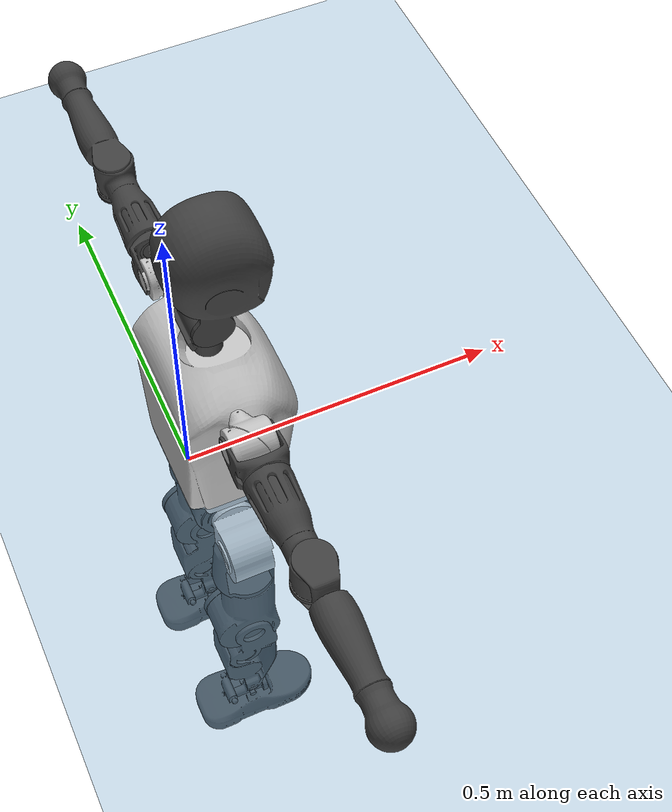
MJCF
<mujoco model="T1">
  <compiler angle="radian" assetdir="assets" balanceinertia="true" inertiafromgeom="false"/>

  <option timestep="0.005" density="1.2" viscosity="2e-05"/>

  <size nkey="1"/>

  <visual>
    <quality shadowsize="8192"/>
    <map shadowclip="0.5"/>
  </visual>

  <default>
    <default class="/">
      <joint armature="0.01" damping="0.01" frictionloss="0.1"/>
      <geom contype="0" conaffinity="0" group="1" solref="-1000 -80"/>
      <site size="0.01 0.005 0.005" group="5"/>
      <general forcelimited="true" biastype="affine" gainprm="25" biasprm="0 -25 -0.6"/>
      <default class="t1">
        <geom rgba="0.25 0.25 0.25 1"/>
        <default class="visual">
          <geom type="mesh" group="2"/>
        </default>
        <default class="collision">
          <geom group="3"/>
        </default>
        <default class="foot">
          <geom size="0.1115 0.05 0.015" type="box" condim="6" group="4" priority="1" solimp="0.015 1 0.015"/>
        </default>
        <default class="reward_collision_sphere">
          <geom group="5" rgba="1 0 0 1"/>
        </default>
      </default>
    </default>
  </default>

  <asset>
    <texture type="skybox" colorspace="auto" name="//unnamed_texture_0" builtin="gradient" rgb1="0.95 0.95 0.95" rgb2="0.95 0.95 0.95" width="100" height="600"/>
    <texture type="2d" colorspace="auto" name="texplane" builtin="checker" rgb1="0.345 0.575 0.748" rgb2="0.345 0.575 0.748" markrgb="1 1 1" width="512" height="512"/>
    <material name="MatPlane" class="/" texture="texplane" texuniform="true" texrepeat="2 2" specular="0.9"/>
    <mesh name="Trunk" class="/" file="Trunk.stl"/>
    <mesh name="H1" class="/" file="H1.stl"/>
    <mesh name="H2" class="/" file="H2.stl"/>
    <mesh name="AL1" class="/" file="AL1.stl"/>
    <mesh name="AL2" class="/" file="AL2.stl"/>
    <mesh name="AL3" class="/" file="AL3.stl"/>
    <mesh name="left_hand_link" class="/" file="left_hand_link.stl"/>
    <mesh name="AR1" class="/" file="AR1.stl"/>
    <mesh name="AR2" class="/" file="AR2.stl"/>
    <mesh name="AR3" class="/" file="AR3.stl"/>
    <mesh name="right_hand_link" class="/" file="right_hand_link.stl"/>
    <mesh name="Waist" class="/" file="Waist.stl"/>
    <mesh name="Hip_Pitch_Left" class="/" file="Hip_Pitch_Left.stl"/>
    <mesh name="Hip_Roll_Left" class="/" file="Hip_Roll_Left.stl"/>
    <mesh name="Hip_Yaw_Left" class="/" file="Hip_Yaw_Left.stl"/>
    <mesh name="Shank_Left" class="/" file="Shank_Left.stl"/>
    <mesh name="Ankle_Cross_Left" class="/" file="Ankle_Cross_Left.stl"/>
    <mesh name="left_foot_link" class="/" file="left_foot_link.stl"/>
    <mesh name="Hip_Pitch_Right" class="/" file="Hip_Pitch_Right.stl"/>
    <mesh name="Hip_Roll_Right" class="/" file="Hip_Roll_Right.stl"/>
    <mesh name="Hip_Yaw_Right" class="/" file="Hip_Yaw_Right.stl"/>
    <mesh name="Shank_Right" class="/" file="Shank_Right.stl"/>
    <mesh name="Ankle_Cross_Right" class="/" file="Ankle_Cross_Right.stl"/>
    <mesh name="right_foot_link" class="/" file="right_foot_link.stl"/>
  </asset>

  <worldbody>
    <geom name="floor" class="/" size="100 100 0.125" type="plane" group="0" material="MatPlane"/>
    <light name="toplight_shadow" class="/" pos="0 0 5" dir="0.0990148 0.0990148 -0.990148" type="directional" ambient="0.04 0.04 0.04" diffuse="0.55 0.55 0.55" specular="0.12 0.12 0.12"/>
    <light name="toplight_fill" class="/" pos="0 0 5" dir="0.0990148 0.0990148 -0.990148" type="directional" castshadow="false" ambient="0.04 0.04 0.04" diffuse="0.3 0.3 0.3" specular="0.08 0.08 0.08"/>
    <body name="trunk" childclass="t1" pos="5.9061e-05 0.00214072 -0.00267648" quat="0.999999 -2.55569e-05 -0.0012495 2.27158e-05">
      <inertial pos="0.0404459 -0.00044566 0.114559" quat="0.999968 -0.000438459 -0.00799688 0.000349959" mass="9.55638" diaginertia="0.0197855 0.0767996 0.0830027"/>
      <joint name="//unnamed_joint_0" type="free" armature="0" damping="0" frictionloss="0"/>
      <geom name="//unnamed_geom_1" class="visual" rgba="0.76 0.76 0.76 1" mesh="Trunk"/>
      <geom name="//unnamed_geom_2" class="collision" size="0.0710091 0.0946788 0.142018" pos="0.0445773 0 0.131338" type="box"/>
      <geom name="//unnamed_geom_3" class="reward_collision_sphere" size="0.108881" pos="0.0445773 0 0.109448"/>
      <geom name="//unnamed_geom_4" class="reward_collision_sphere" size="0.0142018" pos="0.0445773 0.0852485 0"/>
      <geom name="//unnamed_geom_5" class="reward_collision_sphere" size="0.0142018" pos="0.0445773 -0.0852485 0"/>
      <geom name="//unnamed_geom_6" class="reward_collision_sphere" size="0.0142018" pos="0.0445773 0.107313 0.197007"/>
      <geom name="//unnamed_geom_7" class="reward_collision_sphere" size="0.0142018" pos="0.0445773 -0.107313 0.197007"/>
      <site name="imu" pos="-0.0135109 0.0035141 -0.00207605" size="0.00946788"/>
      <camera name="track" pos="0 -2.00585 0" quat="0.707107 0.707107 0 0" mode="trackcom"/>
      <camera name="ego_camera" pos="0.0906405 0 0.459684" quat="-0.5 -0.5 0.5 0.5"/>
      <body name="H1" pos="0.0474955 -0.000199069 0.267551" quat="0.999999 0.00104277 -0.000614503 -0.00076375">
        <inertial pos="0.00123252 -0.000554952 0.0621408" quat="0.763727 -0.0132747 0.00121974 0.645402" mass="0.381555" diaginertia="5.49818e-05 0.000231522 0.000225577"/>
        <joint name="AAHead_yaw" pos="0 0 0" axis="0.00104737 -0.00114013 0.999999" range="-1.61808 1.58062" armature="0.00921684" damping="0.000841368" frictionloss="0.0965819"/>
        <geom name="//unnamed_geom_8" class="visual" mesh="H1"/>
        <body name="H2" pos="-0.000369576 -0.000736664 0.0695403" quat="0.999999 7.54126e-05 0.000700217 0.00112607">
          <inertial pos="0.00488033 -1.51486e-05 0.107803" quat="0.988479 0.10569 -0.0746138 -0.0785563" mass="0.519671" diaginertia="0.000447904 0.0018946 0.0027101"/>
          <joint name="Head_pitch" pos="0 0 0" axis="-0.0130433 -0.999902 0.00510463" range="-1.27321 0.403392" armature="0.0107919" damping="0.0191065" frictionloss="0.106949"/>
          <geom name="//unnamed_geom_9" class="visual" mesh="H2"/>
          <geom name="//unnamed_geom_10" class="collision" size="0.075743" pos="0.00742955 0 0.120393"/>
          <geom name="//unnamed_geom_11" class="reward_collision_sphere" size="0.0852109" pos="0.0148591 0 0.109448"/>
        </body>
      </body>
      <body name="AL1" pos="0.0461085 0.109167 0.241934" quat="1 0.000172413 0.000817375 -0.000279005">
        <inertial pos="-0.00313431 0.0440856 -0.00138048" quat="0.506765 0.503549 -0.503286 0.486138" mass="0.438723" diaginertia="0.000300159 0.00131835 0.000452284"/>
        <joint name="Left_Shoulder_Pitch" pos="0 0 0" axis="-0.00129351 0.999999 -0.000771142" stiffness="0.00150179" range="-3.29345 1.2194" armature="0.00953427" damping="0.017208" frictionloss="0.0917945"/>
        <geom name="//unnamed_geom_12" class="visual" rgba="0.76 0.76 0.76 1" mesh="AL1"/>
        <body name="AL2" pos="-0.000522581 0.0494705 -0.0027683" quat="0.999999 -0.00101624 0.000136696 0.000908976">
          <inertial pos="0.00262859 0.0372969 -0.00291563" quat="0.487395 0.50922 -0.490893 0.51202" mass="0.141184" diaginertia="9.20964e-05 0.000343744 0.000276864"/>
          <joint name="Left_Shoulder_Roll" pos="0 0 0" axis="-0.99993 -0.00607317 0.0101221" range="-1.5626 1.7555" armature="0.00891035" damping="0.00374919" frictionloss="0.0819542"/>
          <geom name="//unnamed_geom_13" class="visual" mesh="AL2"/>
          <body name="AL3" pos="-0.0020435 0.0593395 0.00115701" quat="1 -0.000233696 -0.000444035 -0.000320191">
            <inertial pos="0.000634498 0.0856532 0.00260396" quat="0.706659 0.707553 -0.000917203 0.00116176" mass="0.867421" diaginertia="0.00295528 0.013092 0.000959966"/>
            <joint name="Left_Elbow_Pitch" pos="0 0 0" axis="-0.0113213 -0.999906 -0.00776122" stiffness="0.000203059" range="-2.29349 2.27577" armature="0.00965529" damping="0.00290254" frictionloss="0.0978965"/>
            <geom name="//unnamed_geom_14" class="visual" mesh="AL3"/>
            <geom name="//unnamed_geom_15" class="collision" size="0.0284036 0.0710091" pos="0 0.0501462 0" quat="0.707105 0.707108 0 0" type="cylinder"/>
            <geom name="//unnamed_geom_16" class="reward_collision_sphere" size="0.0340844"/>
            <body name="left_hand_link" pos="-0.0018257 0.145336 0.00268605" quat="1 1.95033e-05 -6.62583e-05 6.3216e-05">
              <inertial pos="5.06091e-05 0.110951 0.00305126" quat="0.707484 0.706728 0.000838893 0.0011569" mass="0.283782" diaginertia="0.00184338 0.00875224 0.000348814"/>
              <joint name="Left_Elbow_Yaw" pos="0 0 0" axis="0.00973951 0.0121625 0.999879" range="-2.45029 0.0110371" armature="0.00882316" damping="0.0118629" frictionloss="0.104465"/>
              <geom name="//unnamed_geom_17" class="visual" mesh="left_hand_link"/>
              <geom name="//unnamed_geom_18" class="collision" size="0.0284036 0.082844" pos="0 0.13038 0" quat="0.707105 0.707108 0 0" type="cylinder"/>
              <geom name="//unnamed_geom_19" class="reward_collision_sphere" size="0.0473394"/>
              <geom name="//unnamed_geom_20" class="reward_collision_sphere" size="0.0331376" pos="0 0.110322 0"/>
              <geom name="//unnamed_geom_21" class="reward_collision_sphere" size="0.0331376" pos="0 0.215629 0"/>
            </body>
          </body>
        </body>
      </body>
      <body name="AR1" pos="0.045067 -0.107639 0.242675" quat="0.999999 -0.000590252 0.00118297 0.000797647">
        <inertial pos="0.000299649 -0.0464079 -0.000852035" quat="0.502048 0.499333 -0.506076 0.492444" mass="0.447054" diaginertia="0.00029841 0.0013127 0.000455887"/>
        <joint name="Right_Shoulder_Pitch" pos="0 0 0" axis="0.000384931 -1 -0.000534527" range="-1.22366 3.35173" armature="0.00982115" damping="0" frictionloss="0.0908707"/>
        <geom name="//unnamed_geom_22" class="visual" rgba="0.76 0.76 0.76 1" mesh="AR1"/>
        <body name="AR2" pos="-0.000950695 -0.0463474 0.000655556" quat="0.999999 0.00101147 0.000510433 -0.000171034">
          <inertial pos="0.0021924 -0.0383521 0.00277662" quat="0.509941 0.489363 -0.511382 0.488848" mass="0.130742" diaginertia="9.33543e-05 0.000354092 0.000267064"/>
          <joint name="Right_Shoulder_Roll" pos="0 0 0" axis="-0.99993 0.00580135 -0.0103475" stiffness="2.70246e-05" range="-1.75084 1.57385" armature="0.00950499" damping="0.0130576" frictionloss="0.107764"/>
          <geom name="//unnamed_geom_23" class="visual" mesh="AR2"/>
          <body name="AR3" pos="-0.00109859 -0.0579281 -0.000189368" quat="1 -0.000149965 -0.00011396 0.000148758">
            <inertial pos="-0.00288961 -0.0851625 -0.000855228" quat="0.702466 0.711655 -0.00827081 0.00457335" mass="0.882389" diaginertia="0.00280711 0.0123931 0.000973553"/>
            <joint name="Right_Elbow_Pitch" pos="0 0 0" axis="-0.00310217 0.999976 -0.00612035" range="-2.26478 2.23803" armature="0.00810592" damping="0.00267373" frictionloss="0.0980399"/>
            <geom name="//unnamed_geom_24" class="visual" mesh="AR3"/>
            <geom name="//unnamed_geom_25" class="collision" size="0.0284036 0.0710091" pos="0 -0.0501462 0" quat="0.707105 0.707108 0 0" type="cylinder"/>
            <geom name="//unnamed_geom_26" class="reward_collision_sphere" size="0.0340844"/>
            <body name="right_hand_link" pos="-0.000288225 -0.148093 0.00267466" quat="1 6.17844e-06 -5.26716e-06 -1.86468e-05">
              <inertial pos="-0.00239725 -0.107127 0.00127939" quat="0.705426 0.708782 0.000580257 0.00128962" mass="0.274343" diaginertia="0.00182686 0.00808631 0.000337547"/>
              <joint name="Right_Elbow_Yaw" pos="0 0 0" axis="0.00185215 0.00285553 0.999994" range="0.0110906 2.44366" armature="0.00948199" damping="0.00530844" frictionloss="0.0935587"/>
              <geom name="//unnamed_geom_27" class="visual" mesh="right_hand_link"/>
              <geom name="//unnamed_geom_28" class="collision" size="0.0284036 0.082844" pos="0 -0.13038 0" quat="0.707105 0.707108 0 0" type="cylinder"/>
              <geom name="//unnamed_geom_29" class="reward_collision_sphere" size="0.0473394"/>
              <geom name="//unnamed_geom_30" class="reward_collision_sphere" size="0.0331376" pos="0 -0.110322 0"/>
              <geom name="//unnamed_geom_31" class="reward_collision_sphere" size="0.0331376" pos="0 -0.215629 0"/>
            </body>
          </body>
        </body>
      </body>
      <body name="Waist" pos="0.0486969 0.000765552 -0.124095" quat="1 -9.78037e-05 -6.39657e-06 -8.92184e-05">
        <inertial pos="0.00369379 9.27479e-05 0.00874785" quat="0.983999 0.000338098 -0.178172 0.000900456" mass="2.16882" diaginertia="0.00117046 0.00549233 0.0071851"/>
        <joint name="Waist" pos="0 0 0" axis="0.00465522 -0.00165416 0.999988" range="-1.62007 1.5986" armature="0.00956809" damping="0" frictionloss="0.0959153"/>
        <geom name="//unnamed_geom_32" class="visual" mesh="Waist"/>
        <body name="Hip_Pitch_Left" pos="-8.86854e-05 0.108818 0.00285713" quat="1 1.1026e-05 3.76003e-05 0.000264566">
          <inertial pos="-0.00106839 -0.00721017 -0.0224669" quat="0.975012 0.221374 0.0183938 0.00243495" mass="0.895805" diaginertia="0.000418973 0.00147994 0.00194113"/>
          <joint name="Left_Hip_Pitch" pos="0 0 0" axis="-0.00294454 0.999985 -0.0045955" range="-1.74476 1.57989" armature="0.00953928" damping="0" frictionloss="0.0817621"/>
          <geom name="//unnamed_geom_33" class="visual" rgba="0.76 0.76 0.76 1" mesh="Hip_Pitch_Left"/>
          <body name="Hip_Roll_Left" pos="0.00234889 -0.000337792 -0.020616" quat="1 -3.46213e-05 5.55055e-06 2.61566e-06">
            <inertial pos="0.000474714 0.00116264 -0.0589107" quat="0.705043 -0.00542882 -0.009505 0.70908" mass="0.338969" diaginertia="0.000412015 0.00162252 0.000838591"/>
            <joint name="Left_Hip_Roll" pos="0 0 0" axis="-0.999997 0.000835668 -0.00218457" range="-1.5186 0.20338" armature="0.00948469" damping="0.0215034" frictionloss="0.0832342"/>
            <geom name="//unnamed_geom_34" class="visual" mesh="Hip_Roll_Left"/>
            <geom name="//unnamed_geom_35" class="reward_collision_sphere" size="0.0520733"/>
            <body name="Hip_Yaw_Left" pos="-0.00106992 -0.00149799 -0.0875301" quat="1 -1.8994e-05 -6.20013e-05 7.64306e-06">
              <inertial pos="-0.00580217 0.000286477 -0.10063" quat="0.696741 -0.0339373 -0.0314486 0.715829" mass="1.79785" diaginertia="0.00603435 0.0257659 0.00411114"/>
              <joint name="Left_Hip_Yaw" pos="0 0 0" axis="-0.00921169 0.00397358 -0.99995" range="-1.01903 1.05914" armature="0.00829399" damping="0" frictionloss="0.0815745"/>
              <geom name="//unnamed_geom_36" class="visual" mesh="Hip_Yaw_Left"/>
              <geom name="//unnamed_geom_37" class="collision" size="0.0473394 0.075743" type="cylinder"/>
              <body name="Shank_Left" pos="-0.0106534 0.00266251 -0.144502" quat="0.999999 -0.000904818 -0.000780562 -0.000522291">
                <inertial pos="-0.0031388 -0.00195268 -0.136468" quat="0.997337 -0.0121124 -0.0236276 0.0679232" mass="1.48075" diaginertia="0.00824411 0.0357163 0.00296947"/>
                <joint name="Left_Knee_Pitch" pos="0 0 0" axis="-0.0034784 0.999911 -0.0129122" stiffness="0.000278438" range="0.0110432 2.34337" armature="0.010624" damping="0.0142469" frictionloss="0.0817937"/>
                <geom name="//unnamed_geom_38" class="visual" mesh="Shank_Left"/>
                <geom name="//unnamed_geom_39" class="collision" size="0.0473394 0.0710091" pos="0 0 -0.131338" type="cylinder"/>
                <geom name="//unnamed_geom_40" class="reward_collision_sphere" size="0.0615412"/>
                <body name="Ankle_Cross_Left" pos="-0.00283657 -0.000532706 -0.306652" quat="1 -5.36446e-05 -5.70174e-05 2.5667e-05">
                  <inertial pos="-0.00335484 0.00039111 -0.00872359" quat="0.446781 0.540098 0.555759 0.447004" mass="0.0616265" diaginertia="6.5879e-06 2.62203e-05 1.77312e-05"/>
                  <joint name="Left_Ankle_Pitch" pos="0 0 0" axis="0.000772318 0.999973 0.00729261" range="-0.870512 0.293641" armature="0.00947564" damping="0.0143943" frictionloss="0.0921303"/>
                  <geom name="//unnamed_geom_41" class="visual" mesh="Ankle_Cross_Left"/>
                  <body name="left_foot_link" pos="0.00199432 0.000236232 -0.0131682" quat="1 0.000823687 -0.000291556 -0.00030591">
                    <inertial pos="3.13236e-05 -0.000135701 -0.00752413" quat="-0.000431088 0.621256 0.00063249 0.783607" mass="0.565484" diaginertia="0.000591208 0.002425 0.00336504"/>
                    <joint name="Left_Ankle_Roll" pos="0 0 0" axis="-0.999924 0.0103701 0.00663214" range="-0.490469 0.458247" armature="0.00935847" damping="0.0217782" frictionloss="0.0939356"/>
                    <geom name="//unnamed_geom_42" class="visual" mesh="left_foot_link"/>
                    <geom name="left_foot" class="foot" size="0.11451 0.0519819 0.0152444" pos="0.00742955 0 -0.0164173"/>
                    <geom name="//unnamed_geom_44" class="reward_collision_sphere" size="0.049233" pos="0.00742955 0 -0.0164173"/>
                    <geom name="//unnamed_geom_45" class="reward_collision_sphere" size="0.0284036" pos="0.0705807 -0.0230673 -0.0164173"/>
                    <geom name="//unnamed_geom_46" class="reward_collision_sphere" size="0.0284036" pos="-0.0520069 -0.0230673 -0.0164173"/>
                    <site name="left_foot" class="foot" pos="0.00742955 0 -0.0164173" size="0.00946788"/>
                  </body>
                </body>
              </body>
            </body>
          </body>
        </body>
        <body name="Hip_Pitch_Right" pos="-0.00351956 -0.107334 0.002524" quat="0.999999 -4.09582e-05 0.000150743 0.00112881">
          <inertial pos="-0.000398285 0.00512279 -0.0204936" quat="0.972919 -0.23045 0.0170486 -0.00555815" mass="0.860618" diaginertia="0.000400928 0.00147124 0.00198063"/>
          <joint name="Right_Hip_Pitch" pos="0 0 0" axis="0.00280377 -0.999996 0.000115434" range="-1.53009 1.74384" armature="0.00937143" damping="0.0173993" frictionloss="0.107061"/>
          <geom name="//unnamed_geom_47" class="visual" rgba="0.76 0.76 0.76 1" mesh="Hip_Pitch_Right"/>
          <body name="Hip_Roll_Right" pos="-0.00311756 0.000874983 -0.0193017" quat="1 -5.51348e-05 -0.000319086 0.00014208">
            <inertial pos="0.00149771 -0.000467426 -0.0575897" quat="0.707188 -0.00623387 -0.00601419 0.706972" mass="0.327189" diaginertia="0.000383332 0.00154451 0.000807422"/>
            <joint name="Right_Hip_Roll" pos="0 0 0" axis="-0.999923 -0.0121035 -0.00282377" range="-0.156891 1.56283" armature="0.00933895" damping="0.00354227" frictionloss="0.107483"/>
            <geom name="//unnamed_geom_48" class="visual" mesh="Hip_Roll_Right"/>
            <geom name="//unnamed_geom_49" class="reward_collision_sphere" size="0.0520733"/>
            <body name="Hip_Yaw_Right" pos="0.0024363 -0.00104339 -0.0873293" quat="1 0.000158318 1.29436e-05 -0.000101764">
              <inertial pos="-0.00743944 0.00209405 -0.0988043" quat="0.71574 -0.0312069 -0.0337943 0.69685" mass="1.78231" diaginertia="0.00584814 0.0248719 0.00392895"/>
              <joint name="Right_Hip_Yaw" pos="0 0 0" axis="0.00594977 -0.00284193 -0.999978" range="-1.01727 1.00224" armature="0.00938454" damping="0.0204779" frictionloss="0.0953435"/>
              <geom name="//unnamed_geom_50" class="visual" mesh="Hip_Yaw_Right"/>
              <geom name="//unnamed_geom_51" class="collision" size="0.0473394 0.075743" type="cylinder"/>
              <body name="Shank_Right" pos="-0.00866162 0.000288468 -0.144381" quat="1 1.87433e-05 -0.000145118 0.000155135">
                <inertial pos="-0.00674684 -0.000327157 -0.136611" quat="0.999363 -0.00186942 -0.0110644 -0.0338764" mass="1.51157" diaginertia="0.00779542 0.0353884 0.00298719"/>
                <joint name="Right_Knee_Pitch" pos="0 0 0" axis="-0.00137149 -0.999984 0.00557223" range="-2.33285 -0.0572906" armature="0.00971393" damping="0.00903196" frictionloss="0.0835916"/>
                <geom name="//unnamed_geom_52" class="visual" mesh="Shank_Right"/>
                <geom name="//unnamed_geom_53" class="collision" size="0.0473394 0.0710091" pos="0 0 -0.131338" type="cylinder"/>
                <geom name="//unnamed_geom_54" class="reward_collision_sphere" size="0.0615412"/>
                <body name="Ankle_Cross_Right" pos="-0.00117084 -0.00184082 -0.309537" quat="1 -6.39138e-06 9.15888e-06 -6.83409e-07">
                  <inertial pos="-0.00290038 -0.00117828 -0.00829823" quat="0.446586 0.554721 0.544711 0.442872" mass="0.061006" diaginertia="6.62912e-06 2.6533e-05 1.79455e-05"/>
                  <joint name="Right_Ankle_Pitch" pos="0 0 0" axis="8.92269e-05 -1 0.000237897" range="-0.305383 0.910117" armature="0.0100583" damping="0.00651237" frictionloss="0.0938912"/>
                  <geom name="//unnamed_geom_55" class="visual" mesh="Ankle_Cross_Right"/>
                  <body name="right_foot_link" pos="0.00129028 -0.00020199 -0.0117242" quat="1 8.09319e-05 0.000213059 0.000129452">
                    <inertial pos="-0.000275062 -0.000536935 -0.00744413" quat="0.00371439 0.623713 0.000284851 0.781645" mass="0.587945" diaginertia="0.00060599 0.00235128 0.00344924"/>
                    <joint name="Right_Ankle_Roll" pos="0 0 0" axis="-1 -0.000285319 9.61323e-05" range="-0.426626 0.446697" armature="0.00887577" damping="0.00378172" frictionloss="0.105499"/>
                    <geom name="//unnamed_geom_56" class="visual" mesh="right_foot_link"/>
                    <geom name="right_foot" class="foot" size="0.101883 0.0417868 0.0155817" pos="0.00742955 0 -0.0164173"/>
                    <geom name="//unnamed_geom_58" class="reward_collision_sphere" size="0.0378715"/>
                    <geom name="//unnamed_geom_59" class="reward_collision_sphere" size="0.0284036" pos="0.00742955 0 -0.0164173"/>
                    <geom name="//unnamed_geom_60" class="reward_collision_sphere" size="0.0284036" pos="0.0705807 0.0230673 -0.0164173"/>
                    <geom name="//unnamed_geom_61" class="reward_collision_sphere" size="0.0284036" pos="-0.0520069 0.0230673 -0.0164173"/>
                    <site name="right_foot" class="foot" pos="0.00742955 0 -0.0164173" size="0.00946788"/>
                  </body>
                </body>
              </body>
            </body>
          </body>
        </body>
      </body>
    </body>
  </worldbody>

  <contact>
    <pair class="/" geom1="floor" geom2="left_foot" name="//unnamed_contact_0"/>
    <pair class="/" geom1="floor" geom2="right_foot" name="//unnamed_contact_1"/>
  </contact>

  <actuator>
    <general name="AAHead_yaw" class="/" joint="AAHead_yaw" forcerange="-6.61497 6.61497" gainprm="25.2549" biasprm="0 -25.2549 -0.55996"/>
    <general name="Head_pitch" class="/" joint="Head_pitch" forcerange="-6.87191 6.87191" gainprm="25.2549" biasprm="0 -25.2549 -0.55996"/>
    <general name="Left_Shoulder_Pitch" class="/" joint="Left_Shoulder_Pitch" forcerange="-16.4006 16.4006" gainprm="25.2549" biasprm="0 -25.2549 -0.55996"/>
    <general name="Left_Shoulder_Roll" class="/" joint="Left_Shoulder_Roll" forcerange="-16.5222 16.5222" gainprm="25.2549" biasprm="0 -25.2549 -0.55996"/>
    <general name="Left_Elbow_Pitch" class="/" joint="Left_Elbow_Pitch" forcerange="-15.3898 15.3898" gainprm="25.2549" biasprm="0 -25.2549 -0.55996"/>
    <general name="Left_Elbow_Yaw" class="/" joint="Left_Elbow_Yaw" forcerange="-17.1031 17.1031" gainprm="25.2549" biasprm="0 -25.2549 -0.55996"/>
    <general name="Right_Shoulder_Pitch" class="/" joint="Right_Shoulder_Pitch" forcerange="-16.5022 16.5022" gainprm="25.2549" biasprm="0 -25.2549 -0.55996"/>
    <general name="Right_Shoulder_Roll" class="/" joint="Right_Shoulder_Roll" forcerange="-18.2591 18.2591" gainprm="25.2549" biasprm="0 -25.2549 -0.55996"/>
    <general name="Right_Elbow_Pitch" class="/" joint="Right_Elbow_Pitch" forcerange="-17.2588 17.2588" gainprm="25.2549" biasprm="0 -25.2549 -0.55996"/>
    <general name="Right_Elbow_Yaw" class="/" joint="Right_Elbow_Yaw" forcerange="-17.006 17.006" gainprm="25.2549" biasprm="0 -25.2549 -0.55996"/>
    <general name="Waist" class="/" joint="Waist" forcerange="-28.1854 28.1854" gainprm="25.2549" biasprm="0 -25.2549 -0.55996"/>
    <general name="Left_Hip_Pitch" class="/" joint="Left_Hip_Pitch" forcerange="-42.0348 42.0348" gainprm="25.2549" biasprm="0 -25.2549 -0.55996"/>
    <general name="Left_Hip_Roll" class="/" joint="Left_Hip_Roll" forcerange="-31.1981 31.1981" gainprm="25.2549" biasprm="0 -25.2549 -0.55996"/>
    <general name="Left_Hip_Yaw" class="/" joint="Left_Hip_Yaw" forcerange="-26.3561 26.3561" gainprm="25.2549" biasprm="0 -25.2549 -0.55996"/>
    <general name="Left_Knee_Pitch" class="/" joint="Left_Knee_Pitch" forcerange="-62.0735 62.0735" gainprm="25.2549" biasprm="0 -25.2549 -0.55996"/>
    <general name="Left_Ankle_Pitch" class="/" joint="Left_Ankle_Pitch" forcerange="-17.5879 17.5879" gainprm="25.2549" biasprm="0 -25.2549 -0.55996"/>
    <general name="Left_Ankle_Roll" class="/" joint="Left_Ankle_Roll" forcerange="-13.3581 13.3581" gainprm="25.2549" biasprm="0 -25.2549 -0.55996"/>
    <general name="Right_Hip_Pitch" class="/" joint="Right_Hip_Pitch" forcerange="-38.2378 38.2378" gainprm="25.2549" biasprm="0 -25.2549 -0.55996"/>
    <general name="Right_Hip_Roll" class="/" joint="Right_Hip_Roll" forcerange="-29.2584 29.2584" gainprm="25.2549" biasprm="0 -25.2549 -0.55996"/>
    <general name="Right_Hip_Yaw" class="/" joint="Right_Hip_Yaw" forcerange="-30.7439 30.7439" gainprm="25.2549" biasprm="0 -25.2549 -0.55996"/>
    <general name="Right_Knee_Pitch" class="/" joint="Right_Knee_Pitch" forcerange="-56.5325 56.5325" gainprm="25.2549" biasprm="0 -25.2549 -0.55996"/>
    <general name="Right_Ankle_Pitch" class="/" joint="Right_Ankle_Pitch" forcerange="-18.6823 18.6823" gainprm="25.2549" biasprm="0 -25.2549 -0.55996"/>
    <general name="Right_Ankle_Roll" class="/" joint="Right_Ankle_Roll" forcerange="-14.3316 14.3316" gainprm="25.2549" biasprm="0 -25.2549 -0.55996"/>
  </actuator>

  <sensor>
    <gyro site="imu" name="imu_angular_velocity"/>
    <velocimeter site="imu" name="imu_linear_velocity"/>
    <framelinvel objtype="site" objname="left_foot" name="left_foot_global_linear_velocity"/>
    <framelinvel objtype="site" objname="right_foot" name="right_foot_global_linear_velocity"/>
  </sensor>

  <keyframe>
    <key name="home" qpos="0 0 0.6385 1 0 0 0 0 0 0 1.4 0 -0.4 0 -1.4 0 0.4 0 -0.4 0 0 0.8 -0.4 0 0.4 0 0 -0.8 0.4 0"/>
  </keyframe>
</mujoco>
